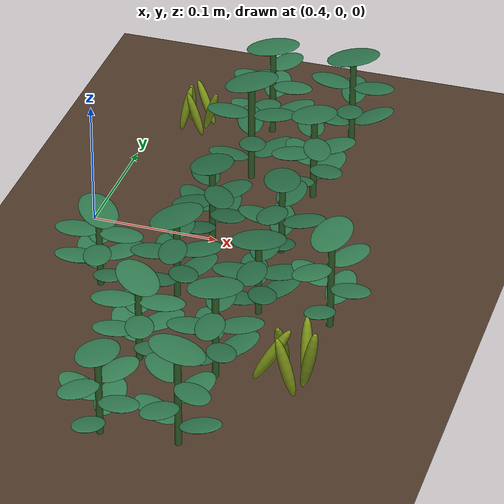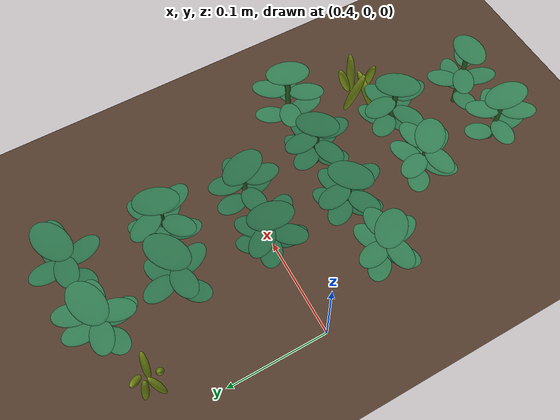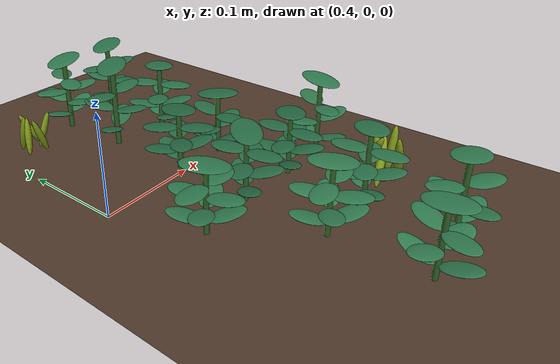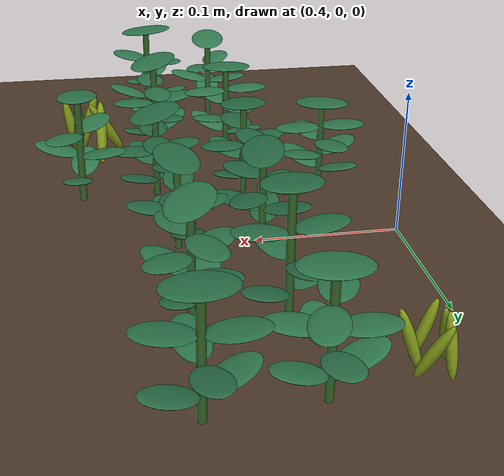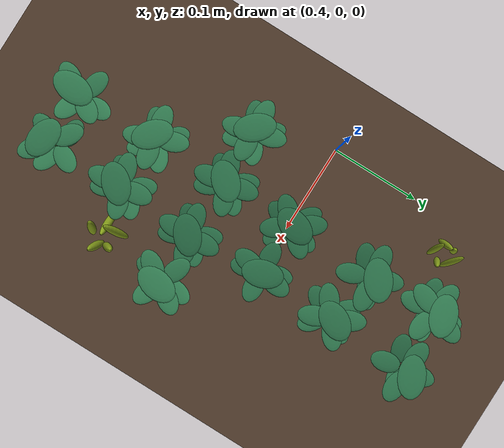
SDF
<sdf version="1.9">
 <world name="jim_field">
  <model name="ground_plane">
   <static>true</static>
   <link name="link">
    <collision name="collision">
     <geometry><plane><normal>0 0 1</normal><size>40 40</size></plane></geometry>
    </collision>
    <visual name="visual">
     <geometry><plane><normal>0 0 1</normal><size>40 40</size></plane></geometry>
     <material>
      <ambient>0.20 0.15 0.11 1</ambient>
      <diffuse>0.30 0.22 0.16 1</diffuse>
      <specular>0.01 0.01 0.01 1</specular>
     </material>
    </visual>
   </link>
  </model>
  <model name="field">
   <static>true</static>
   <pose>0.1837 -0.2516 0 0 0 0</pose>
   <model name="crop_98">
    <static>true</static>
    <pose>0.3139 -0.0006 0 0 0 0</pose>
    <link name="link">
     <visual name="stem">
      <pose>0 0 0.0323 0 0 0</pose>
      <geometry><cylinder><radius>0.0025</radius><length>0.0646</length></cylinder></geometry>
      <material>
       <ambient>0.10 0.22 0.09 1</ambient>
       <diffuse>0.20 0.40 0.16 1</diffuse>
       <specular>0.05 0.06 0.05 1</specular>
      </material>
     </visual>
     <visual name="leaflet_0_0">
      <pose>-0.0018 -0.0174 0.0194 0 -0.300 4.6082</pose>
      <geometry><ellipsoid><radii>0.0170 0.0105 0.0016</radii></ellipsoid></geometry>
      <material>
       <ambient>0.099 0.248 0.149 1</ambient>
       <diffuse>0.188 0.477 0.308 1</diffuse>
       <specular>0.05 0.06 0.05 1</specular>
      </material>
     </visual>
     <visual name="leaflet_0_1">
      <pose>0.0018 0.0174 0.0194 0 -0.300 7.7498</pose>
      <geometry><ellipsoid><radii>0.0170 0.0105 0.0016</radii></ellipsoid></geometry>
      <material>
       <ambient>0.099 0.248 0.149 1</ambient>
       <diffuse>0.188 0.477 0.308 1</diffuse>
       <specular>0.05 0.06 0.05 1</specular>
      </material>
     </visual>
     <visual name="leaflet_1_0">
      <pose>0.0165 -0.0056 0.0327 0 -0.200 5.9582</pose>
      <geometry><ellipsoid><radii>0.0170 0.0105 0.0016</radii></ellipsoid></geometry>
      <material>
       <ambient>0.099 0.248 0.149 1</ambient>
       <diffuse>0.188 0.477 0.308 1</diffuse>
       <specular>0.05 0.06 0.05 1</specular>
      </material>
     </visual>
     <visual name="leaflet_1_1">
      <pose>-0.0165 0.0056 0.0327 0 -0.200 9.0998</pose>
      <geometry><ellipsoid><radii>0.0170 0.0105 0.0016</radii></ellipsoid></geometry>
      <material>
       <ambient>0.099 0.248 0.149 1</ambient>
       <diffuse>0.188 0.477 0.308 1</diffuse>
       <specular>0.05 0.06 0.05 1</specular>
      </material>
     </visual>
     <visual name="leaflet_2_0">
      <pose>0.0091 0.0149 0.0461 0 -0.100 7.3082</pose>
      <geometry><ellipsoid><radii>0.0170 0.0105 0.0016</radii></ellipsoid></geometry>
      <material>
       <ambient>0.099 0.248 0.149 1</ambient>
       <diffuse>0.188 0.477 0.308 1</diffuse>
       <specular>0.05 0.06 0.05 1</specular>
      </material>
     </visual>
     <visual name="leaflet_2_1">
      <pose>-0.0091 -0.0149 0.0461 0 -0.100 10.4498</pose>
      <geometry><ellipsoid><radii>0.0170 0.0105 0.0016</radii></ellipsoid></geometry>
      <material>
       <ambient>0.099 0.248 0.149 1</ambient>
       <diffuse>0.188 0.477 0.308 1</diffuse>
       <specular>0.05 0.06 0.05 1</specular>
      </material>
     </visual>
     <visual name="leaflet_terminal">
      <pose>0 0 0.0686 0 -0.12 4.6082</pose>
      <geometry><ellipsoid><radii>0.0215 0.0140 0.0018</radii></ellipsoid></geometry>
      <material>
       <ambient>0.099 0.248 0.149 1</ambient>
       <diffuse>0.188 0.477 0.308 1</diffuse>
       <specular>0.05 0.06 0.05 1</specular>
      </material>
     </visual>
    </link>
   </model>
   <model name="crop_99">
    <static>true</static>
    <pose>0.3697 0.0043 0 0 0 0</pose>
    <link name="link">
     <visual name="stem">
      <pose>0 0 0.0381 0 0 0</pose>
      <geometry><cylinder><radius>0.0026</radius><length>0.0761</length></cylinder></geometry>
      <material>
       <ambient>0.10 0.22 0.09 1</ambient>
       <diffuse>0.20 0.40 0.16 1</diffuse>
       <specular>0.05 0.06 0.05 1</specular>
      </material>
     </visual>
     <visual name="leaflet_0_0">
      <pose>-0.0176 0.0040 0.0228 0 -0.300 2.9194</pose>
      <geometry><ellipsoid><radii>0.0170 0.0105 0.0016</radii></ellipsoid></geometry>
      <material>
       <ambient>0.095 0.241 0.143 1</ambient>
       <diffuse>0.180 0.463 0.298 1</diffuse>
       <specular>0.05 0.06 0.05 1</specular>
      </material>
     </visual>
     <visual name="leaflet_0_1">
      <pose>0.0176 -0.0040 0.0228 0 -0.300 6.0610</pose>
      <geometry><ellipsoid><radii>0.0170 0.0105 0.0016</radii></ellipsoid></geometry>
      <material>
       <ambient>0.095 0.241 0.143 1</ambient>
       <diffuse>0.180 0.463 0.298 1</diffuse>
       <specular>0.05 0.06 0.05 1</specular>
      </material>
     </visual>
     <visual name="leaflet_1_0">
      <pose>-0.0077 -0.0163 0.0386 0 -0.200 4.2694</pose>
      <geometry><ellipsoid><radii>0.0170 0.0105 0.0016</radii></ellipsoid></geometry>
      <material>
       <ambient>0.095 0.241 0.143 1</ambient>
       <diffuse>0.180 0.463 0.298 1</diffuse>
       <specular>0.05 0.06 0.05 1</specular>
      </material>
     </visual>
     <visual name="leaflet_1_1">
      <pose>0.0077 0.0163 0.0386 0 -0.200 7.4110</pose>
      <geometry><ellipsoid><radii>0.0170 0.0105 0.0016</radii></ellipsoid></geometry>
      <material>
       <ambient>0.095 0.241 0.143 1</ambient>
       <diffuse>0.180 0.463 0.298 1</diffuse>
       <specular>0.05 0.06 0.05 1</specular>
      </material>
     </visual>
     <visual name="leaflet_2_0">
      <pose>0.0142 -0.0111 0.0543 0 -0.100 5.6194</pose>
      <geometry><ellipsoid><radii>0.0170 0.0105 0.0016</radii></ellipsoid></geometry>
      <material>
       <ambient>0.095 0.241 0.143 1</ambient>
       <diffuse>0.180 0.463 0.298 1</diffuse>
       <specular>0.05 0.06 0.05 1</specular>
      </material>
     </visual>
     <visual name="leaflet_2_1">
      <pose>-0.0142 0.0111 0.0543 0 -0.100 8.7610</pose>
      <geometry><ellipsoid><radii>0.0170 0.0105 0.0016</radii></ellipsoid></geometry>
      <material>
       <ambient>0.095 0.241 0.143 1</ambient>
       <diffuse>0.180 0.463 0.298 1</diffuse>
       <specular>0.05 0.06 0.05 1</specular>
      </material>
     </visual>
     <visual name="leaflet_terminal">
      <pose>0 0 0.0801 0 -0.12 2.9194</pose>
      <geometry><ellipsoid><radii>0.0215 0.0140 0.0018</radii></ellipsoid></geometry>
      <material>
       <ambient>0.095 0.241 0.143 1</ambient>
       <diffuse>0.180 0.463 0.298 1</diffuse>
       <specular>0.05 0.06 0.05 1</specular>
      </material>
     </visual>
    </link>
   </model>
   <model name="crop_115">
    <static>true</static>
    <pose>0.3111 0.0891 0 0 0 0</pose>
    <link name="link">
     <visual name="stem">
      <pose>0 0 0.0334 0 0 0</pose>
      <geometry><cylinder><radius>0.0025</radius><length>0.0668</length></cylinder></geometry>
      <material>
       <ambient>0.10 0.22 0.09 1</ambient>
       <diffuse>0.20 0.40 0.16 1</diffuse>
       <specular>0.05 0.06 0.05 1</specular>
      </material>
     </visual>
     <visual name="leaflet_0_0">
      <pose>-0.0128 0.0120 0.0200 0 -0.300 2.3888</pose>
      <geometry><ellipsoid><radii>0.0170 0.0105 0.0016</radii></ellipsoid></geometry>
      <material>
       <ambient>0.097 0.245 0.146 1</ambient>
       <diffuse>0.185 0.471 0.304 1</diffuse>
       <specular>0.05 0.06 0.05 1</specular>
      </material>
     </visual>
     <visual name="leaflet_0_1">
      <pose>0.0128 -0.0120 0.0200 0 -0.300 5.5304</pose>
      <geometry><ellipsoid><radii>0.0170 0.0105 0.0016</radii></ellipsoid></geometry>
      <material>
       <ambient>0.097 0.245 0.146 1</ambient>
       <diffuse>0.185 0.471 0.304 1</diffuse>
       <specular>0.05 0.06 0.05 1</specular>
      </material>
     </visual>
     <visual name="leaflet_1_0">
      <pose>-0.0145 -0.0099 0.0304 0 -0.200 3.7388</pose>
      <geometry><ellipsoid><radii>0.0170 0.0105 0.0016</radii></ellipsoid></geometry>
      <material>
       <ambient>0.097 0.245 0.146 1</ambient>
       <diffuse>0.185 0.471 0.304 1</diffuse>
       <specular>0.05 0.06 0.05 1</specular>
      </material>
     </visual>
     <visual name="leaflet_1_1">
      <pose>0.0145 0.0099 0.0304 0 -0.200 6.8804</pose>
      <geometry><ellipsoid><radii>0.0170 0.0105 0.0016</radii></ellipsoid></geometry>
      <material>
       <ambient>0.097 0.245 0.146 1</ambient>
       <diffuse>0.185 0.471 0.304 1</diffuse>
       <specular>0.05 0.06 0.05 1</specular>
      </material>
     </visual>
     <visual name="leaflet_2_0">
      <pose>0.0065 -0.0163 0.0407 0 -0.100 5.0888</pose>
      <geometry><ellipsoid><radii>0.0170 0.0105 0.0016</radii></ellipsoid></geometry>
      <material>
       <ambient>0.097 0.245 0.146 1</ambient>
       <diffuse>0.185 0.471 0.304 1</diffuse>
       <specular>0.05 0.06 0.05 1</specular>
      </material>
     </visual>
     <visual name="leaflet_2_1">
      <pose>-0.0065 0.0163 0.0407 0 -0.100 8.2304</pose>
      <geometry><ellipsoid><radii>0.0170 0.0105 0.0016</radii></ellipsoid></geometry>
      <material>
       <ambient>0.097 0.245 0.146 1</ambient>
       <diffuse>0.185 0.471 0.304 1</diffuse>
       <specular>0.05 0.06 0.05 1</specular>
      </material>
     </visual>
     <visual name="leaflet_3_0">
      <pose>0.0173 0.0027 0.0511 0 0.000 6.4388</pose>
      <geometry><ellipsoid><radii>0.0170 0.0105 0.0016</radii></ellipsoid></geometry>
      <material>
       <ambient>0.097 0.245 0.146 1</ambient>
       <diffuse>0.185 0.471 0.304 1</diffuse>
       <specular>0.05 0.06 0.05 1</specular>
      </material>
     </visual>
     <visual name="leaflet_3_1">
      <pose>-0.0173 -0.0027 0.0511 0 0.000 9.5804</pose>
      <geometry><ellipsoid><radii>0.0170 0.0105 0.0016</radii></ellipsoid></geometry>
      <material>
       <ambient>0.097 0.245 0.146 1</ambient>
       <diffuse>0.185 0.471 0.304 1</diffuse>
       <specular>0.05 0.06 0.05 1</specular>
      </material>
     </visual>
     <visual name="leaflet_terminal">
      <pose>0 0 0.0708 0 -0.12 2.3888</pose>
      <geometry><ellipsoid><radii>0.0215 0.0140 0.0018</radii></ellipsoid></geometry>
      <material>
       <ambient>0.097 0.245 0.146 1</ambient>
       <diffuse>0.185 0.471 0.304 1</diffuse>
       <specular>0.05 0.06 0.05 1</specular>
      </material>
     </visual>
    </link>
   </model>
   <model name="crop_116">
    <static>true</static>
    <pose>0.3700 0.0862 0 0 0 0</pose>
    <link name="link">
     <visual name="stem">
      <pose>0 0 0.0364 0 0 0</pose>
      <geometry><cylinder><radius>0.0026</radius><length>0.0729</length></cylinder></geometry>
      <material>
       <ambient>0.10 0.22 0.09 1</ambient>
       <diffuse>0.20 0.40 0.16 1</diffuse>
       <specular>0.05 0.06 0.05 1</specular>
      </material>
     </visual>
     <visual name="leaflet_0_0">
      <pose>-0.0130 -0.0123 0.0219 0 -0.300 3.9001</pose>
      <geometry><ellipsoid><radii>0.0170 0.0105 0.0016</radii></ellipsoid></geometry>
      <material>
       <ambient>0.088 0.230 0.134 1</ambient>
       <diffuse>0.167 0.441 0.283 1</diffuse>
       <specular>0.05 0.06 0.05 1</specular>
      </material>
     </visual>
     <visual name="leaflet_0_1">
      <pose>0.0130 0.0123 0.0219 0 -0.300 7.0416</pose>
      <geometry><ellipsoid><radii>0.0170 0.0105 0.0016</radii></ellipsoid></geometry>
      <material>
       <ambient>0.088 0.230 0.134 1</ambient>
       <diffuse>0.167 0.441 0.283 1</diffuse>
       <specular>0.05 0.06 0.05 1</specular>
      </material>
     </visual>
     <visual name="leaflet_1_0">
      <pose>0.0092 -0.0154 0.0332 0 -0.200 5.2501</pose>
      <geometry><ellipsoid><radii>0.0170 0.0105 0.0016</radii></ellipsoid></geometry>
      <material>
       <ambient>0.088 0.230 0.134 1</ambient>
       <diffuse>0.167 0.441 0.283 1</diffuse>
       <specular>0.05 0.06 0.05 1</specular>
      </material>
     </visual>
     <visual name="leaflet_1_1">
      <pose>-0.0092 0.0154 0.0332 0 -0.200 8.3916</pose>
      <geometry><ellipsoid><radii>0.0170 0.0105 0.0016</radii></ellipsoid></geometry>
      <material>
       <ambient>0.088 0.230 0.134 1</ambient>
       <diffuse>0.167 0.441 0.283 1</diffuse>
       <specular>0.05 0.06 0.05 1</specular>
      </material>
     </visual>
     <visual name="leaflet_2_0">
      <pose>0.0170 0.0056 0.0444 0 -0.100 6.6001</pose>
      <geometry><ellipsoid><radii>0.0170 0.0105 0.0016</radii></ellipsoid></geometry>
      <material>
       <ambient>0.088 0.230 0.134 1</ambient>
       <diffuse>0.167 0.441 0.283 1</diffuse>
       <specular>0.05 0.06 0.05 1</specular>
      </material>
     </visual>
     <visual name="leaflet_2_1">
      <pose>-0.0170 -0.0056 0.0444 0 -0.100 9.7416</pose>
      <geometry><ellipsoid><radii>0.0170 0.0105 0.0016</radii></ellipsoid></geometry>
      <material>
       <ambient>0.088 0.230 0.134 1</ambient>
       <diffuse>0.167 0.441 0.283 1</diffuse>
       <specular>0.05 0.06 0.05 1</specular>
      </material>
     </visual>
     <visual name="leaflet_3_0">
      <pose>-0.0017 0.0178 0.0557 0 0.000 7.9501</pose>
      <geometry><ellipsoid><radii>0.0170 0.0105 0.0016</radii></ellipsoid></geometry>
      <material>
       <ambient>0.088 0.230 0.134 1</ambient>
       <diffuse>0.167 0.441 0.283 1</diffuse>
       <specular>0.05 0.06 0.05 1</specular>
      </material>
     </visual>
     <visual name="leaflet_3_1">
      <pose>0.0017 -0.0178 0.0557 0 0.000 11.0916</pose>
      <geometry><ellipsoid><radii>0.0170 0.0105 0.0016</radii></ellipsoid></geometry>
      <material>
       <ambient>0.088 0.230 0.134 1</ambient>
       <diffuse>0.167 0.441 0.283 1</diffuse>
       <specular>0.05 0.06 0.05 1</specular>
      </material>
     </visual>
     <visual name="leaflet_terminal">
      <pose>0 0 0.0769 0 -0.12 3.9001</pose>
      <geometry><ellipsoid><radii>0.0215 0.0140 0.0018</radii></ellipsoid></geometry>
      <material>
       <ambient>0.088 0.230 0.134 1</ambient>
       <diffuse>0.167 0.441 0.283 1</diffuse>
       <specular>0.05 0.06 0.05 1</specular>
      </material>
     </visual>
    </link>
   </model>
   <model name="crop_131">
    <static>true</static>
    <pose>0.2517 0.1695 0 0 0 0</pose>
    <link name="link">
     <visual name="stem">
      <pose>0 0 0.0308 0 0 0</pose>
      <geometry><cylinder><radius>0.0025</radius><length>0.0616</length></cylinder></geometry>
      <material>
       <ambient>0.10 0.22 0.09 1</ambient>
       <diffuse>0.20 0.40 0.16 1</diffuse>
       <specular>0.05 0.06 0.05 1</specular>
      </material>
     </visual>
     <visual name="leaflet_0_0">
      <pose>-0.0112 0.0132 0.0185 0 -0.300 2.2720</pose>
      <geometry><ellipsoid><radii>0.0170 0.0105 0.0016</radii></ellipsoid></geometry>
      <material>
       <ambient>0.093 0.238 0.140 1</ambient>
       <diffuse>0.175 0.456 0.293 1</diffuse>
       <specular>0.05 0.06 0.05 1</specular>
      </material>
     </visual>
     <visual name="leaflet_0_1">
      <pose>0.0112 -0.0132 0.0185 0 -0.300 5.4136</pose>
      <geometry><ellipsoid><radii>0.0170 0.0105 0.0016</radii></ellipsoid></geometry>
      <material>
       <ambient>0.093 0.238 0.140 1</ambient>
       <diffuse>0.175 0.456 0.293 1</diffuse>
       <specular>0.05 0.06 0.05 1</specular>
      </material>
     </visual>
     <visual name="leaflet_1_0">
      <pose>-0.0153 -0.0080 0.0280 0 -0.200 3.6220</pose>
      <geometry><ellipsoid><radii>0.0170 0.0105 0.0016</radii></ellipsoid></geometry>
      <material>
       <ambient>0.093 0.238 0.140 1</ambient>
       <diffuse>0.175 0.456 0.293 1</diffuse>
       <specular>0.05 0.06 0.05 1</specular>
      </material>
     </visual>
     <visual name="leaflet_1_1">
      <pose>0.0153 0.0080 0.0280 0 -0.200 6.7636</pose>
      <geometry><ellipsoid><radii>0.0170 0.0105 0.0016</radii></ellipsoid></geometry>
      <material>
       <ambient>0.093 0.238 0.140 1</ambient>
       <diffuse>0.175 0.456 0.293 1</diffuse>
       <specular>0.05 0.06 0.05 1</specular>
      </material>
     </visual>
     <visual name="leaflet_2_0">
      <pose>0.0044 -0.0167 0.0376 0 -0.100 4.9720</pose>
      <geometry><ellipsoid><radii>0.0170 0.0105 0.0016</radii></ellipsoid></geometry>
      <material>
       <ambient>0.093 0.238 0.140 1</ambient>
       <diffuse>0.175 0.456 0.293 1</diffuse>
       <specular>0.05 0.06 0.05 1</specular>
      </material>
     </visual>
     <visual name="leaflet_2_1">
      <pose>-0.0044 0.0167 0.0376 0 -0.100 8.1136</pose>
      <geometry><ellipsoid><radii>0.0170 0.0105 0.0016</radii></ellipsoid></geometry>
      <material>
       <ambient>0.093 0.238 0.140 1</ambient>
       <diffuse>0.175 0.456 0.293 1</diffuse>
       <specular>0.05 0.06 0.05 1</specular>
      </material>
     </visual>
     <visual name="leaflet_3_0">
      <pose>0.0173 0.0007 0.0471 0 0.000 6.3220</pose>
      <geometry><ellipsoid><radii>0.0170 0.0105 0.0016</radii></ellipsoid></geometry>
      <material>
       <ambient>0.093 0.238 0.140 1</ambient>
       <diffuse>0.175 0.456 0.293 1</diffuse>
       <specular>0.05 0.06 0.05 1</specular>
      </material>
     </visual>
     <visual name="leaflet_3_1">
      <pose>-0.0173 -0.0007 0.0471 0 0.000 9.4636</pose>
      <geometry><ellipsoid><radii>0.0170 0.0105 0.0016</radii></ellipsoid></geometry>
      <material>
       <ambient>0.093 0.238 0.140 1</ambient>
       <diffuse>0.175 0.456 0.293 1</diffuse>
       <specular>0.05 0.06 0.05 1</specular>
      </material>
     </visual>
     <visual name="leaflet_terminal">
      <pose>0 0 0.0656 0 -0.12 2.2720</pose>
      <geometry><ellipsoid><radii>0.0215 0.0140 0.0018</radii></ellipsoid></geometry>
      <material>
       <ambient>0.093 0.238 0.140 1</ambient>
       <diffuse>0.175 0.456 0.293 1</diffuse>
       <specular>0.05 0.06 0.05 1</specular>
      </material>
     </visual>
    </link>
   </model>
   <model name="crop_132">
    <static>true</static>
    <pose>0.3113 0.1736 0 0 0 0</pose>
    <link name="link">
     <visual name="stem">
      <pose>0 0 0.0331 0 0 0</pose>
      <geometry><cylinder><radius>0.0025</radius><length>0.0661</length></cylinder></geometry>
      <material>
       <ambient>0.10 0.22 0.09 1</ambient>
       <diffuse>0.20 0.40 0.16 1</diffuse>
       <specular>0.05 0.06 0.05 1</specular>
      </material>
     </visual>
     <visual name="leaflet_0_0">
      <pose>0.0119 0.0128 0.0198 0 -0.300 0.8228</pose>
      <geometry><ellipsoid><radii>0.0170 0.0105 0.0016</radii></ellipsoid></geometry>
      <material>
       <ambient>0.079 0.214 0.122 1</ambient>
       <diffuse>0.147 0.409 0.260 1</diffuse>
       <specular>0.05 0.06 0.05 1</specular>
      </material>
     </visual>
     <visual name="leaflet_0_1">
      <pose>-0.0119 -0.0128 0.0198 0 -0.300 3.9644</pose>
      <geometry><ellipsoid><radii>0.0170 0.0105 0.0016</radii></ellipsoid></geometry>
      <material>
       <ambient>0.079 0.214 0.122 1</ambient>
       <diffuse>0.147 0.409 0.260 1</diffuse>
       <specular>0.05 0.06 0.05 1</specular>
      </material>
     </visual>
     <visual name="leaflet_1_0">
      <pose>-0.0099 0.0144 0.0301 0 -0.200 2.1728</pose>
      <geometry><ellipsoid><radii>0.0170 0.0105 0.0016</radii></ellipsoid></geometry>
      <material>
       <ambient>0.079 0.214 0.122 1</ambient>
       <diffuse>0.147 0.409 0.260 1</diffuse>
       <specular>0.05 0.06 0.05 1</specular>
      </material>
     </visual>
     <visual name="leaflet_1_1">
      <pose>0.0099 -0.0144 0.0301 0 -0.200 5.3144</pose>
      <geometry><ellipsoid><radii>0.0170 0.0105 0.0016</radii></ellipsoid></geometry>
      <material>
       <ambient>0.079 0.214 0.122 1</ambient>
       <diffuse>0.147 0.409 0.260 1</diffuse>
       <specular>0.05 0.06 0.05 1</specular>
      </material>
     </visual>
     <visual name="leaflet_2_0">
      <pose>-0.0163 -0.0065 0.0403 0 -0.100 3.5228</pose>
      <geometry><ellipsoid><radii>0.0170 0.0105 0.0016</radii></ellipsoid></geometry>
      <material>
       <ambient>0.079 0.214 0.122 1</ambient>
       <diffuse>0.147 0.409 0.260 1</diffuse>
       <specular>0.05 0.06 0.05 1</specular>
      </material>
     </visual>
     <visual name="leaflet_2_1">
      <pose>0.0163 0.0065 0.0403 0 -0.100 6.6644</pose>
      <geometry><ellipsoid><radii>0.0170 0.0105 0.0016</radii></ellipsoid></geometry>
      <material>
       <ambient>0.079 0.214 0.122 1</ambient>
       <diffuse>0.147 0.409 0.260 1</diffuse>
       <specular>0.05 0.06 0.05 1</specular>
      </material>
     </visual>
     <visual name="leaflet_3_0">
      <pose>0.0028 -0.0173 0.0506 0 0.000 4.8728</pose>
      <geometry><ellipsoid><radii>0.0170 0.0105 0.0016</radii></ellipsoid></geometry>
      <material>
       <ambient>0.079 0.214 0.122 1</ambient>
       <diffuse>0.147 0.409 0.260 1</diffuse>
       <specular>0.05 0.06 0.05 1</specular>
      </material>
     </visual>
     <visual name="leaflet_3_1">
      <pose>-0.0028 0.0173 0.0506 0 0.000 8.0144</pose>
      <geometry><ellipsoid><radii>0.0170 0.0105 0.0016</radii></ellipsoid></geometry>
      <material>
       <ambient>0.079 0.214 0.122 1</ambient>
       <diffuse>0.147 0.409 0.260 1</diffuse>
       <specular>0.05 0.06 0.05 1</specular>
      </material>
     </visual>
     <visual name="leaflet_terminal">
      <pose>0 0 0.0701 0 -0.12 0.8228</pose>
      <geometry><ellipsoid><radii>0.0215 0.0140 0.0018</radii></ellipsoid></geometry>
      <material>
       <ambient>0.079 0.214 0.122 1</ambient>
       <diffuse>0.147 0.409 0.260 1</diffuse>
       <specular>0.05 0.06 0.05 1</specular>
      </material>
     </visual>
    </link>
   </model>
   <model name="crop_133">
    <static>true</static>
    <pose>0.3758 0.1698 0 0 0 0</pose>
    <link name="link">
     <visual name="stem">
      <pose>0 0 0.0304 0 0 0</pose>
      <geometry><cylinder><radius>0.0025</radius><length>0.0609</length></cylinder></geometry>
      <material>
       <ambient>0.10 0.22 0.09 1</ambient>
       <diffuse>0.20 0.40 0.16 1</diffuse>
       <specular>0.05 0.06 0.05 1</specular>
      </material>
     </visual>
     <visual name="leaflet_0_0">
      <pose>-0.0134 -0.0109 0.0183 0 -0.300 3.8237</pose>
      <geometry><ellipsoid><radii>0.0170 0.0105 0.0016</radii></ellipsoid></geometry>
      <material>
       <ambient>0.077 0.212 0.120 1</ambient>
       <diffuse>0.144 0.404 0.257 1</diffuse>
       <specular>0.05 0.06 0.05 1</specular>
      </material>
     </visual>
     <visual name="leaflet_0_1">
      <pose>0.0134 0.0109 0.0183 0 -0.300 6.9653</pose>
      <geometry><ellipsoid><radii>0.0170 0.0105 0.0016</radii></ellipsoid></geometry>
      <material>
       <ambient>0.077 0.212 0.120 1</ambient>
       <diffuse>0.144 0.404 0.257 1</diffuse>
       <specular>0.05 0.06 0.05 1</specular>
      </material>
     </visual>
     <visual name="leaflet_1_0">
      <pose>0.0077 -0.0154 0.0277 0 -0.200 5.1737</pose>
      <geometry><ellipsoid><radii>0.0170 0.0105 0.0016</radii></ellipsoid></geometry>
      <material>
       <ambient>0.077 0.212 0.120 1</ambient>
       <diffuse>0.144 0.404 0.257 1</diffuse>
       <specular>0.05 0.06 0.05 1</specular>
      </material>
     </visual>
     <visual name="leaflet_1_1">
      <pose>-0.0077 0.0154 0.0277 0 -0.200 8.3153</pose>
      <geometry><ellipsoid><radii>0.0170 0.0105 0.0016</radii></ellipsoid></geometry>
      <material>
       <ambient>0.077 0.212 0.120 1</ambient>
       <diffuse>0.144 0.404 0.257 1</diffuse>
       <specular>0.05 0.06 0.05 1</specular>
      </material>
     </visual>
     <visual name="leaflet_2_0">
      <pose>0.0167 0.0041 0.0371 0 -0.100 6.5237</pose>
      <geometry><ellipsoid><radii>0.0170 0.0105 0.0016</radii></ellipsoid></geometry>
      <material>
       <ambient>0.077 0.212 0.120 1</ambient>
       <diffuse>0.144 0.404 0.257 1</diffuse>
       <specular>0.05 0.06 0.05 1</specular>
      </material>
     </visual>
     <visual name="leaflet_2_1">
      <pose>-0.0167 -0.0041 0.0371 0 -0.100 9.6653</pose>
      <geometry><ellipsoid><radii>0.0170 0.0105 0.0016</radii></ellipsoid></geometry>
      <material>
       <ambient>0.077 0.212 0.120 1</ambient>
       <diffuse>0.144 0.404 0.257 1</diffuse>
       <specular>0.05 0.06 0.05 1</specular>
      </material>
     </visual>
     <visual name="leaflet_3_0">
      <pose>-0.0003 0.0172 0.0466 0 0.000 7.8737</pose>
      <geometry><ellipsoid><radii>0.0170 0.0105 0.0016</radii></ellipsoid></geometry>
      <material>
       <ambient>0.077 0.212 0.120 1</ambient>
       <diffuse>0.144 0.404 0.257 1</diffuse>
       <specular>0.05 0.06 0.05 1</specular>
      </material>
     </visual>
     <visual name="leaflet_3_1">
      <pose>0.0003 -0.0172 0.0466 0 0.000 11.0153</pose>
      <geometry><ellipsoid><radii>0.0170 0.0105 0.0016</radii></ellipsoid></geometry>
      <material>
       <ambient>0.077 0.212 0.120 1</ambient>
       <diffuse>0.144 0.404 0.257 1</diffuse>
       <specular>0.05 0.06 0.05 1</specular>
      </material>
     </visual>
     <visual name="leaflet_terminal">
      <pose>0 0 0.0649 0 -0.12 3.8237</pose>
      <geometry><ellipsoid><radii>0.0215 0.0140 0.0018</radii></ellipsoid></geometry>
      <material>
       <ambient>0.077 0.212 0.120 1</ambient>
       <diffuse>0.144 0.404 0.257 1</diffuse>
       <specular>0.05 0.06 0.05 1</specular>
      </material>
     </visual>
    </link>
   </model>
   <model name="crop_134">
    <static>true</static>
    <pose>0.4306 0.1707 0 0 0 0</pose>
    <link name="link">
     <visual name="stem">
      <pose>0 0 0.0383 0 0 0</pose>
      <geometry><cylinder><radius>0.0026</radius><length>0.0766</length></cylinder></geometry>
      <material>
       <ambient>0.10 0.22 0.09 1</ambient>
       <diffuse>0.20 0.40 0.16 1</diffuse>
       <specular>0.05 0.06 0.05 1</specular>
      </material>
     </visual>
     <visual name="leaflet_0_0">
      <pose>0.0029 0.0179 0.0230 0 -0.300 1.4111</pose>
      <geometry><ellipsoid><radii>0.0170 0.0105 0.0016</radii></ellipsoid></geometry>
      <material>
       <ambient>0.095 0.242 0.144 1</ambient>
       <diffuse>0.180 0.464 0.299 1</diffuse>
       <specular>0.05 0.06 0.05 1</specular>
      </material>
     </visual>
     <visual name="leaflet_0_1">
      <pose>-0.0029 -0.0179 0.0230 0 -0.300 4.5527</pose>
      <geometry><ellipsoid><radii>0.0170 0.0105 0.0016</radii></ellipsoid></geometry>
      <material>
       <ambient>0.095 0.242 0.144 1</ambient>
       <diffuse>0.180 0.464 0.299 1</diffuse>
       <specular>0.05 0.06 0.05 1</specular>
      </material>
     </visual>
     <visual name="leaflet_1_0">
      <pose>-0.0168 0.0067 0.0388 0 -0.200 2.7611</pose>
      <geometry><ellipsoid><radii>0.0170 0.0105 0.0016</radii></ellipsoid></geometry>
      <material>
       <ambient>0.095 0.242 0.144 1</ambient>
       <diffuse>0.180 0.464 0.299 1</diffuse>
       <specular>0.05 0.06 0.05 1</specular>
      </material>
     </visual>
     <visual name="leaflet_1_1">
      <pose>0.0168 -0.0067 0.0388 0 -0.200 5.9027</pose>
      <geometry><ellipsoid><radii>0.0170 0.0105 0.0016</radii></ellipsoid></geometry>
      <material>
       <ambient>0.095 0.242 0.144 1</ambient>
       <diffuse>0.180 0.464 0.299 1</diffuse>
       <specular>0.05 0.06 0.05 1</specular>
      </material>
     </visual>
     <visual name="leaflet_2_0">
      <pose>-0.0102 -0.0149 0.0546 0 -0.100 4.1111</pose>
      <geometry><ellipsoid><radii>0.0170 0.0105 0.0016</radii></ellipsoid></geometry>
      <material>
       <ambient>0.095 0.242 0.144 1</ambient>
       <diffuse>0.180 0.464 0.299 1</diffuse>
       <specular>0.05 0.06 0.05 1</specular>
      </material>
     </visual>
     <visual name="leaflet_2_1">
      <pose>0.0102 0.0149 0.0546 0 -0.100 7.2527</pose>
      <geometry><ellipsoid><radii>0.0170 0.0105 0.0016</radii></ellipsoid></geometry>
      <material>
       <ambient>0.095 0.242 0.144 1</ambient>
       <diffuse>0.180 0.464 0.299 1</diffuse>
       <specular>0.05 0.06 0.05 1</specular>
      </material>
     </visual>
     <visual name="leaflet_terminal">
      <pose>0 0 0.0806 0 -0.12 1.4111</pose>
      <geometry><ellipsoid><radii>0.0215 0.0140 0.0018</radii></ellipsoid></geometry>
      <material>
       <ambient>0.095 0.242 0.144 1</ambient>
       <diffuse>0.180 0.464 0.299 1</diffuse>
       <specular>0.05 0.06 0.05 1</specular>
      </material>
     </visual>
    </link>
   </model>
   <model name="crop_149">
    <static>true</static>
    <pose>0.3125 0.2541 0 0 0 0</pose>
    <link name="link">
     <visual name="stem">
      <pose>0 0 0.0315 0 0 0</pose>
      <geometry><cylinder><radius>0.0025</radius><length>0.0630</length></cylinder></geometry>
      <material>
       <ambient>0.10 0.22 0.09 1</ambient>
       <diffuse>0.20 0.40 0.16 1</diffuse>
       <specular>0.05 0.06 0.05 1</specular>
      </material>
     </visual>
     <visual name="leaflet_0_0">
      <pose>-0.0050 -0.0166 0.0189 0 -0.300 4.4204</pose>
      <geometry><ellipsoid><radii>0.0170 0.0105 0.0016</radii></ellipsoid></geometry>
      <material>
       <ambient>0.073 0.205 0.114 1</ambient>
       <diffuse>0.136 0.390 0.247 1</diffuse>
       <specular>0.05 0.06 0.05 1</specular>
      </material>
     </visual>
     <visual name="leaflet_0_1">
      <pose>0.0050 0.0166 0.0189 0 -0.300 7.5620</pose>
      <geometry><ellipsoid><radii>0.0170 0.0105 0.0016</radii></ellipsoid></geometry>
      <material>
       <ambient>0.073 0.205 0.114 1</ambient>
       <diffuse>0.136 0.390 0.247 1</diffuse>
       <specular>0.05 0.06 0.05 1</specular>
      </material>
     </visual>
     <visual name="leaflet_1_0">
      <pose>0.0151 -0.0085 0.0286 0 -0.200 5.7704</pose>
      <geometry><ellipsoid><radii>0.0170 0.0105 0.0016</radii></ellipsoid></geometry>
      <material>
       <ambient>0.073 0.205 0.114 1</ambient>
       <diffuse>0.136 0.390 0.247 1</diffuse>
       <specular>0.05 0.06 0.05 1</specular>
      </material>
     </visual>
     <visual name="leaflet_1_1">
      <pose>-0.0151 0.0085 0.0286 0 -0.200 8.9120</pose>
      <geometry><ellipsoid><radii>0.0170 0.0105 0.0016</radii></ellipsoid></geometry>
      <material>
       <ambient>0.073 0.205 0.114 1</ambient>
       <diffuse>0.136 0.390 0.247 1</diffuse>
       <specular>0.05 0.06 0.05 1</specular>
      </material>
     </visual>
     <visual name="leaflet_2_0">
      <pose>0.0116 0.0129 0.0384 0 -0.100 7.1204</pose>
      <geometry><ellipsoid><radii>0.0170 0.0105 0.0016</radii></ellipsoid></geometry>
      <material>
       <ambient>0.073 0.205 0.114 1</ambient>
       <diffuse>0.136 0.390 0.247 1</diffuse>
       <specular>0.05 0.06 0.05 1</specular>
      </material>
     </visual>
     <visual name="leaflet_2_1">
      <pose>-0.0116 -0.0129 0.0384 0 -0.100 10.2620</pose>
      <geometry><ellipsoid><radii>0.0170 0.0105 0.0016</radii></ellipsoid></geometry>
      <material>
       <ambient>0.073 0.205 0.114 1</ambient>
       <diffuse>0.136 0.390 0.247 1</diffuse>
       <specular>0.05 0.06 0.05 1</specular>
      </material>
     </visual>
     <visual name="leaflet_3_0">
      <pose>-0.0100 0.0142 0.0482 0 0.000 8.4704</pose>
      <geometry><ellipsoid><radii>0.0170 0.0105 0.0016</radii></ellipsoid></geometry>
      <material>
       <ambient>0.073 0.205 0.114 1</ambient>
       <diffuse>0.136 0.390 0.247 1</diffuse>
       <specular>0.05 0.06 0.05 1</specular>
      </material>
     </visual>
     <visual name="leaflet_3_1">
      <pose>0.0100 -0.0142 0.0482 0 0.000 11.6120</pose>
      <geometry><ellipsoid><radii>0.0170 0.0105 0.0016</radii></ellipsoid></geometry>
      <material>
       <ambient>0.073 0.205 0.114 1</ambient>
       <diffuse>0.136 0.390 0.247 1</diffuse>
       <specular>0.05 0.06 0.05 1</specular>
      </material>
     </visual>
     <visual name="leaflet_terminal">
      <pose>0 0 0.0670 0 -0.12 4.4204</pose>
      <geometry><ellipsoid><radii>0.0215 0.0140 0.0018</radii></ellipsoid></geometry>
      <material>
       <ambient>0.073 0.205 0.114 1</ambient>
       <diffuse>0.136 0.390 0.247 1</diffuse>
       <specular>0.05 0.06 0.05 1</specular>
      </material>
     </visual>
    </link>
   </model>
   <model name="crop_150">
    <static>true</static>
    <pose>0.3687 0.2522 0 0 0 0</pose>
    <link name="link">
     <visual name="stem">
      <pose>0 0 0.0304 0 0 0</pose>
      <geometry><cylinder><radius>0.0025</radius><length>0.0609</length></cylinder></geometry>
      <material>
       <ambient>0.10 0.22 0.09 1</ambient>
       <diffuse>0.20 0.40 0.16 1</diffuse>
       <specular>0.05 0.06 0.05 1</specular>
      </material>
     </visual>
     <visual name="leaflet_0_0">
      <pose>0.0049 -0.0165 0.0183 0 -0.300 4.9998</pose>
      <geometry><ellipsoid><radii>0.0170 0.0105 0.0016</radii></ellipsoid></geometry>
      <material>
       <ambient>0.079 0.215 0.122 1</ambient>
       <diffuse>0.148 0.409 0.261 1</diffuse>
       <specular>0.05 0.06 0.05 1</specular>
      </material>
     </visual>
     <visual name="leaflet_0_1">
      <pose>-0.0049 0.0165 0.0183 0 -0.300 8.1414</pose>
      <geometry><ellipsoid><radii>0.0170 0.0105 0.0016</radii></ellipsoid></geometry>
      <material>
       <ambient>0.079 0.215 0.122 1</ambient>
       <diffuse>0.148 0.409 0.261 1</diffuse>
       <specular>0.05 0.06 0.05 1</specular>
      </material>
     </visual>
     <visual name="leaflet_1_0">
      <pose>0.0172 0.0011 0.0308 0 -0.200 6.3498</pose>
      <geometry><ellipsoid><radii>0.0170 0.0105 0.0016</radii></ellipsoid></geometry>
      <material>
       <ambient>0.079 0.215 0.122 1</ambient>
       <diffuse>0.148 0.409 0.261 1</diffuse>
       <specular>0.05 0.06 0.05 1</specular>
      </material>
     </visual>
     <visual name="leaflet_1_1">
      <pose>-0.0172 -0.0011 0.0308 0 -0.200 9.4914</pose>
      <geometry><ellipsoid><radii>0.0170 0.0105 0.0016</radii></ellipsoid></geometry>
      <material>
       <ambient>0.079 0.215 0.122 1</ambient>
       <diffuse>0.148 0.409 0.261 1</diffuse>
       <specular>0.05 0.06 0.05 1</specular>
      </material>
     </visual>
     <visual name="leaflet_2_0">
      <pose>0.0026 0.0170 0.0434 0 -0.100 7.6998</pose>
      <geometry><ellipsoid><radii>0.0170 0.0105 0.0016</radii></ellipsoid></geometry>
      <material>
       <ambient>0.079 0.215 0.122 1</ambient>
       <diffuse>0.148 0.409 0.261 1</diffuse>
       <specular>0.05 0.06 0.05 1</specular>
      </material>
     </visual>
     <visual name="leaflet_2_1">
      <pose>-0.0026 -0.0170 0.0434 0 -0.100 10.8414</pose>
      <geometry><ellipsoid><radii>0.0170 0.0105 0.0016</radii></ellipsoid></geometry>
      <material>
       <ambient>0.079 0.215 0.122 1</ambient>
       <diffuse>0.148 0.409 0.261 1</diffuse>
       <specular>0.05 0.06 0.05 1</specular>
      </material>
     </visual>
     <visual name="leaflet_terminal">
      <pose>0 0 0.0649 0 -0.12 4.9998</pose>
      <geometry><ellipsoid><radii>0.0215 0.0140 0.0018</radii></ellipsoid></geometry>
      <material>
       <ambient>0.079 0.215 0.122 1</ambient>
       <diffuse>0.148 0.409 0.261 1</diffuse>
       <specular>0.05 0.06 0.05 1</specular>
      </material>
     </visual>
    </link>
   </model>
   <model name="crop_166">
    <static>true</static>
    <pose>0.3148 0.3465 0 0 0 0</pose>
    <link name="link">
     <visual name="stem">
      <pose>0 0 0.0421 0 0 0</pose>
      <geometry><cylinder><radius>0.0027</radius><length>0.0841</length></cylinder></geometry>
      <material>
       <ambient>0.10 0.22 0.09 1</ambient>
       <diffuse>0.20 0.40 0.16 1</diffuse>
       <specular>0.05 0.06 0.05 1</specular>
      </material>
     </visual>
     <visual name="leaflet_0_0">
      <pose>0.0156 0.0099 0.0252 0 -0.300 0.5671</pose>
      <geometry><ellipsoid><radii>0.0170 0.0105 0.0016</radii></ellipsoid></geometry>
      <material>
       <ambient>0.082 0.220 0.126 1</ambient>
       <diffuse>0.154 0.419 0.268 1</diffuse>
       <specular>0.05 0.06 0.05 1</specular>
      </material>
     </visual>
     <visual name="leaflet_0_1">
      <pose>-0.0156 -0.0099 0.0252 0 -0.300 3.7087</pose>
      <geometry><ellipsoid><radii>0.0170 0.0105 0.0016</radii></ellipsoid></geometry>
      <material>
       <ambient>0.082 0.220 0.126 1</ambient>
       <diffuse>0.154 0.419 0.268 1</diffuse>
       <specular>0.05 0.06 0.05 1</specular>
      </material>
     </visual>
     <visual name="leaflet_1_0">
      <pose>-0.0063 0.0174 0.0426 0 -0.200 1.9171</pose>
      <geometry><ellipsoid><radii>0.0170 0.0105 0.0016</radii></ellipsoid></geometry>
      <material>
       <ambient>0.082 0.220 0.126 1</ambient>
       <diffuse>0.154 0.419 0.268 1</diffuse>
       <specular>0.05 0.06 0.05 1</specular>
      </material>
     </visual>
     <visual name="leaflet_1_1">
      <pose>0.0063 -0.0174 0.0426 0 -0.200 5.0587</pose>
      <geometry><ellipsoid><radii>0.0170 0.0105 0.0016</radii></ellipsoid></geometry>
      <material>
       <ambient>0.082 0.220 0.126 1</ambient>
       <diffuse>0.154 0.419 0.268 1</diffuse>
       <specular>0.05 0.06 0.05 1</specular>
      </material>
     </visual>
     <visual name="leaflet_2_0">
      <pose>-0.0183 -0.0023 0.0600 0 -0.100 3.2671</pose>
      <geometry><ellipsoid><radii>0.0170 0.0105 0.0016</radii></ellipsoid></geometry>
      <material>
       <ambient>0.082 0.220 0.126 1</ambient>
       <diffuse>0.154 0.419 0.268 1</diffuse>
       <specular>0.05 0.06 0.05 1</specular>
      </material>
     </visual>
     <visual name="leaflet_2_1">
      <pose>0.0183 0.0023 0.0600 0 -0.100 6.4087</pose>
      <geometry><ellipsoid><radii>0.0170 0.0105 0.0016</radii></ellipsoid></geometry>
      <material>
       <ambient>0.082 0.220 0.126 1</ambient>
       <diffuse>0.154 0.419 0.268 1</diffuse>
       <specular>0.05 0.06 0.05 1</specular>
      </material>
     </visual>
     <visual name="leaflet_terminal">
      <pose>0 0 0.0881 0 -0.12 0.5671</pose>
      <geometry><ellipsoid><radii>0.0215 0.0140 0.0018</radii></ellipsoid></geometry>
      <material>
       <ambient>0.082 0.220 0.126 1</ambient>
       <diffuse>0.154 0.419 0.268 1</diffuse>
       <specular>0.05 0.06 0.05 1</specular>
      </material>
     </visual>
    </link>
   </model>
   <model name="crop_167">
    <static>true</static>
    <pose>0.3696 0.3347 0 0 0 0</pose>
    <link name="link">
     <visual name="stem">
      <pose>0 0 0.0355 0 0 0</pose>
      <geometry><cylinder><radius>0.0026</radius><length>0.0711</length></cylinder></geometry>
      <material>
       <ambient>0.10 0.22 0.09 1</ambient>
       <diffuse>0.20 0.40 0.16 1</diffuse>
       <specular>0.05 0.06 0.05 1</specular>
      </material>
     </visual>
     <visual name="leaflet_0_0">
      <pose>-0.0084 -0.0157 0.0213 0 -0.300 4.2223</pose>
      <geometry><ellipsoid><radii>0.0170 0.0105 0.0016</radii></ellipsoid></geometry>
      <material>
       <ambient>0.088 0.229 0.133 1</ambient>
       <diffuse>0.165 0.438 0.281 1</diffuse>
       <specular>0.05 0.06 0.05 1</specular>
      </material>
     </visual>
     <visual name="leaflet_0_1">
      <pose>0.0084 0.0157 0.0213 0 -0.300 7.3639</pose>
      <geometry><ellipsoid><radii>0.0170 0.0105 0.0016</radii></ellipsoid></geometry>
      <material>
       <ambient>0.088 0.229 0.133 1</ambient>
       <diffuse>0.165 0.438 0.281 1</diffuse>
       <specular>0.05 0.06 0.05 1</specular>
      </material>
     </visual>
     <visual name="leaflet_1_0">
      <pose>0.0135 -0.0116 0.0323 0 -0.200 5.5723</pose>
      <geometry><ellipsoid><radii>0.0170 0.0105 0.0016</radii></ellipsoid></geometry>
      <material>
       <ambient>0.088 0.229 0.133 1</ambient>
       <diffuse>0.165 0.438 0.281 1</diffuse>
       <specular>0.05 0.06 0.05 1</specular>
      </material>
     </visual>
     <visual name="leaflet_1_1">
      <pose>-0.0135 0.0116 0.0323 0 -0.200 8.7139</pose>
      <geometry><ellipsoid><radii>0.0170 0.0105 0.0016</radii></ellipsoid></geometry>
      <material>
       <ambient>0.088 0.229 0.133 1</ambient>
       <diffuse>0.165 0.438 0.281 1</diffuse>
       <specular>0.05 0.06 0.05 1</specular>
      </material>
     </visual>
     <visual name="leaflet_2_0">
      <pose>0.0143 0.0106 0.0433 0 -0.100 6.9223</pose>
      <geometry><ellipsoid><radii>0.0170 0.0105 0.0016</radii></ellipsoid></geometry>
      <material>
       <ambient>0.088 0.229 0.133 1</ambient>
       <diffuse>0.165 0.438 0.281 1</diffuse>
       <specular>0.05 0.06 0.05 1</specular>
      </material>
     </visual>
     <visual name="leaflet_2_1">
      <pose>-0.0143 -0.0106 0.0433 0 -0.100 10.0639</pose>
      <geometry><ellipsoid><radii>0.0170 0.0105 0.0016</radii></ellipsoid></geometry>
      <material>
       <ambient>0.088 0.229 0.133 1</ambient>
       <diffuse>0.165 0.438 0.281 1</diffuse>
       <specular>0.05 0.06 0.05 1</specular>
      </material>
     </visual>
     <visual name="leaflet_3_0">
      <pose>-0.0072 0.0163 0.0544 0 0.000 8.2723</pose>
      <geometry><ellipsoid><radii>0.0170 0.0105 0.0016</radii></ellipsoid></geometry>
      <material>
       <ambient>0.088 0.229 0.133 1</ambient>
       <diffuse>0.165 0.438 0.281 1</diffuse>
       <specular>0.05 0.06 0.05 1</specular>
      </material>
     </visual>
     <visual name="leaflet_3_1">
      <pose>0.0072 -0.0163 0.0544 0 0.000 11.4139</pose>
      <geometry><ellipsoid><radii>0.0170 0.0105 0.0016</radii></ellipsoid></geometry>
      <material>
       <ambient>0.088 0.229 0.133 1</ambient>
       <diffuse>0.165 0.438 0.281 1</diffuse>
       <specular>0.05 0.06 0.05 1</specular>
      </material>
     </visual>
     <visual name="leaflet_terminal">
      <pose>0 0 0.0751 0 -0.12 4.2223</pose>
      <geometry><ellipsoid><radii>0.0215 0.0140 0.0018</radii></ellipsoid></geometry>
      <material>
       <ambient>0.088 0.229 0.133 1</ambient>
       <diffuse>0.165 0.438 0.281 1</diffuse>
       <specular>0.05 0.06 0.05 1</specular>
      </material>
     </visual>
    </link>
   </model>
   <model name="crop_183">
    <static>true</static>
    <pose>0.3101 0.4195 0 0 0 0</pose>
    <link name="link">
     <visual name="stem">
      <pose>0 0 0.0376 0 0 0</pose>
      <geometry><cylinder><radius>0.0026</radius><length>0.0751</length></cylinder></geometry>
      <material>
       <ambient>0.10 0.22 0.09 1</ambient>
       <diffuse>0.20 0.40 0.16 1</diffuse>
       <specular>0.05 0.06 0.05 1</specular>
      </material>
     </visual>
     <visual name="leaflet_0_0">
      <pose>0.0173 0.0048 0.0225 0 -0.300 0.2723</pose>
      <geometry><ellipsoid><radii>0.0170 0.0105 0.0016</radii></ellipsoid></geometry>
      <material>
       <ambient>0.093 0.239 0.141 1</ambient>
       <diffuse>0.177 0.458 0.295 1</diffuse>
       <specular>0.05 0.06 0.05 1</specular>
      </material>
     </visual>
     <visual name="leaflet_0_1">
      <pose>-0.0173 -0.0048 0.0225 0 -0.300 3.4139</pose>
      <geometry><ellipsoid><radii>0.0170 0.0105 0.0016</radii></ellipsoid></geometry>
      <material>
       <ambient>0.093 0.239 0.141 1</ambient>
       <diffuse>0.177 0.458 0.295 1</diffuse>
       <specular>0.05 0.06 0.05 1</specular>
      </material>
     </visual>
     <visual name="leaflet_1_0">
      <pose>-0.0009 0.0180 0.0342 0 -0.200 1.6223</pose>
      <geometry><ellipsoid><radii>0.0170 0.0105 0.0016</radii></ellipsoid></geometry>
      <material>
       <ambient>0.093 0.239 0.141 1</ambient>
       <diffuse>0.177 0.458 0.295 1</diffuse>
       <specular>0.05 0.06 0.05 1</specular>
      </material>
     </visual>
     <visual name="leaflet_1_1">
      <pose>0.0009 -0.0180 0.0342 0 -0.200 4.7639</pose>
      <geometry><ellipsoid><radii>0.0170 0.0105 0.0016</radii></ellipsoid></geometry>
      <material>
       <ambient>0.093 0.239 0.141 1</ambient>
       <diffuse>0.177 0.458 0.295 1</diffuse>
       <specular>0.05 0.06 0.05 1</specular>
      </material>
     </visual>
     <visual name="leaflet_2_0">
      <pose>-0.0177 0.0030 0.0458 0 -0.100 2.9723</pose>
      <geometry><ellipsoid><radii>0.0170 0.0105 0.0016</radii></ellipsoid></geometry>
      <material>
       <ambient>0.093 0.239 0.141 1</ambient>
       <diffuse>0.177 0.458 0.295 1</diffuse>
       <specular>0.05 0.06 0.05 1</specular>
      </material>
     </visual>
     <visual name="leaflet_2_1">
      <pose>0.0177 -0.0030 0.0458 0 -0.100 6.1139</pose>
      <geometry><ellipsoid><radii>0.0170 0.0105 0.0016</radii></ellipsoid></geometry>
      <material>
       <ambient>0.093 0.239 0.141 1</ambient>
       <diffuse>0.177 0.458 0.295 1</diffuse>
       <specular>0.05 0.06 0.05 1</specular>
      </material>
     </visual>
     <visual name="leaflet_3_0">
      <pose>-0.0068 -0.0167 0.0575 0 0.000 4.3223</pose>
      <geometry><ellipsoid><radii>0.0170 0.0105 0.0016</radii></ellipsoid></geometry>
      <material>
       <ambient>0.093 0.239 0.141 1</ambient>
       <diffuse>0.177 0.458 0.295 1</diffuse>
       <specular>0.05 0.06 0.05 1</specular>
      </material>
     </visual>
     <visual name="leaflet_3_1">
      <pose>0.0068 0.0167 0.0575 0 0.000 7.4639</pose>
      <geometry><ellipsoid><radii>0.0170 0.0105 0.0016</radii></ellipsoid></geometry>
      <material>
       <ambient>0.093 0.239 0.141 1</ambient>
       <diffuse>0.177 0.458 0.295 1</diffuse>
       <specular>0.05 0.06 0.05 1</specular>
      </material>
     </visual>
     <visual name="leaflet_terminal">
      <pose>0 0 0.0791 0 -0.12 0.2723</pose>
      <geometry><ellipsoid><radii>0.0215 0.0140 0.0018</radii></ellipsoid></geometry>
      <material>
       <ambient>0.093 0.239 0.141 1</ambient>
       <diffuse>0.177 0.458 0.295 1</diffuse>
       <specular>0.05 0.06 0.05 1</specular>
      </material>
     </visual>
    </link>
   </model>
   <model name="crop_184">
    <static>true</static>
    <pose>0.3757 0.4253 0 0 0 0</pose>
    <link name="link">
     <visual name="stem">
      <pose>0 0 0.0369 0 0 0</pose>
      <geometry><cylinder><radius>0.0026</radius><length>0.0737</length></cylinder></geometry>
      <material>
       <ambient>0.10 0.22 0.09 1</ambient>
       <diffuse>0.20 0.40 0.16 1</diffuse>
       <specular>0.05 0.06 0.05 1</specular>
      </material>
     </visual>
     <visual name="leaflet_0_0">
      <pose>0.0166 0.0067 0.0221 0 -0.300 0.3820</pose>
      <geometry><ellipsoid><radii>0.0170 0.0105 0.0016</radii></ellipsoid></geometry>
      <material>
       <ambient>0.084 0.224 0.129 1</ambient>
       <diffuse>0.159 0.428 0.274 1</diffuse>
       <specular>0.05 0.06 0.05 1</specular>
      </material>
     </visual>
     <visual name="leaflet_0_1">
      <pose>-0.0166 -0.0067 0.0221 0 -0.300 3.5236</pose>
      <geometry><ellipsoid><radii>0.0170 0.0105 0.0016</radii></ellipsoid></geometry>
      <material>
       <ambient>0.084 0.224 0.129 1</ambient>
       <diffuse>0.159 0.428 0.274 1</diffuse>
       <specular>0.05 0.06 0.05 1</specular>
      </material>
     </visual>
     <visual name="leaflet_1_0">
      <pose>-0.0029 0.0177 0.0374 0 -0.200 1.7320</pose>
      <geometry><ellipsoid><radii>0.0170 0.0105 0.0016</radii></ellipsoid></geometry>
      <material>
       <ambient>0.084 0.224 0.129 1</ambient>
       <diffuse>0.159 0.428 0.274 1</diffuse>
       <specular>0.05 0.06 0.05 1</specular>
      </material>
     </visual>
     <visual name="leaflet_1_1">
      <pose>0.0029 -0.0177 0.0374 0 -0.200 4.8736</pose>
      <geometry><ellipsoid><radii>0.0170 0.0105 0.0016</radii></ellipsoid></geometry>
      <material>
       <ambient>0.084 0.224 0.129 1</ambient>
       <diffuse>0.159 0.428 0.274 1</diffuse>
       <specular>0.05 0.06 0.05 1</specular>
      </material>
     </visual>
     <visual name="leaflet_2_0">
      <pose>-0.0179 0.0011 0.0526 0 -0.100 3.0820</pose>
      <geometry><ellipsoid><radii>0.0170 0.0105 0.0016</radii></ellipsoid></geometry>
      <material>
       <ambient>0.084 0.224 0.129 1</ambient>
       <diffuse>0.159 0.428 0.274 1</diffuse>
       <specular>0.05 0.06 0.05 1</specular>
      </material>
     </visual>
     <visual name="leaflet_2_1">
      <pose>0.0179 -0.0011 0.0526 0 -0.100 6.2236</pose>
      <geometry><ellipsoid><radii>0.0170 0.0105 0.0016</radii></ellipsoid></geometry>
      <material>
       <ambient>0.084 0.224 0.129 1</ambient>
       <diffuse>0.159 0.428 0.274 1</diffuse>
       <specular>0.05 0.06 0.05 1</specular>
      </material>
     </visual>
     <visual name="leaflet_terminal">
      <pose>0 0 0.0777 0 -0.12 0.3820</pose>
      <geometry><ellipsoid><radii>0.0215 0.0140 0.0018</radii></ellipsoid></geometry>
      <material>
       <ambient>0.084 0.224 0.129 1</ambient>
       <diffuse>0.159 0.428 0.274 1</diffuse>
       <specular>0.05 0.06 0.05 1</specular>
      </material>
     </visual>
    </link>
   </model>
   <model name="weed_far_7">
    <static>true</static>
    <pose>0.2519 0.4047 0 0 0 0</pose>
    <link name="link">
     <visual name="blade_0">
      <pose>0.0024 0.0105 0.0195 -0.4564 0.1035 1.3479</pose>
      <geometry><ellipsoid><radii>0.0034 0.0034 0.0195</radii></ellipsoid></geometry>
      <material>
       <ambient>0.24 0.30 0.04 1</ambient>
       <diffuse>0.52 0.62 0.10 1</diffuse>
       <specular>0.05 0.06 0.05 1</specular>
      </material>
     </visual>
     <visual name="blade_1">
      <pose>-0.0086 0.0064 0.0195 -0.1231 -0.1647 2.4997</pose>
      <geometry><ellipsoid><radii>0.0034 0.0034 0.0195</radii></ellipsoid></geometry>
      <material>
       <ambient>0.24 0.30 0.04 1</ambient>
       <diffuse>0.52 0.62 0.10 1</diffuse>
       <specular>0.05 0.06 0.05 1</specular>
      </material>
     </visual>
     <visual name="blade_2">
      <pose>-0.0099 -0.0041 0.0195 0.0961 -0.2320 3.5342</pose>
      <geometry><ellipsoid><radii>0.0034 0.0034 0.0195</radii></ellipsoid></geometry>
      <material>
       <ambient>0.24 0.30 0.04 1</ambient>
       <diffuse>0.52 0.62 0.10 1</diffuse>
       <specular>0.05 0.06 0.05 1</specular>
      </material>
     </visual>
     <visual name="blade_3">
      <pose>-0.0001 -0.0107 0.0195 0.3192 -0.0034 4.7016</pose>
      <geometry><ellipsoid><radii>0.0034 0.0034 0.0195</radii></ellipsoid></geometry>
      <material>
       <ambient>0.24 0.30 0.04 1</ambient>
       <diffuse>0.52 0.62 0.10 1</diffuse>
       <specular>0.05 0.06 0.05 1</specular>
      </material>
     </visual>
     <visual name="blade_4">
      <pose>0.0105 -0.0020 0.0195 0.0626 0.3236 6.0920</pose>
      <geometry><ellipsoid><radii>0.0034 0.0034 0.0195</radii></ellipsoid></geometry>
      <material>
       <ambient>0.24 0.30 0.04 1</ambient>
       <diffuse>0.52 0.62 0.10 1</diffuse>
       <specular>0.05 0.06 0.05 1</specular>
      </material>
     </visual>
    </link>
   </model>
   <model name="weed_far_11">
    <static>true</static>
    <pose>0.4238 0.0924 0 0 0 0</pose>
    <link name="link">
     <visual name="blade_0">
      <pose>0.0085 0.0107 0.0248 -0.2629 0.2080 0.9015</pose>
      <geometry><ellipsoid><radii>0.0043 0.0043 0.0248</radii></ellipsoid></geometry>
      <material>
       <ambient>0.24 0.30 0.04 1</ambient>
       <diffuse>0.52 0.62 0.10 1</diffuse>
       <specular>0.05 0.06 0.05 1</specular>
      </material>
     </visual>
     <visual name="blade_1">
      <pose>-0.0095 0.0098 0.0248 -0.3058 -0.2969 2.3414</pose>
      <geometry><ellipsoid><radii>0.0043 0.0043 0.0248</radii></ellipsoid></geometry>
      <material>
       <ambient>0.24 0.30 0.04 1</ambient>
       <diffuse>0.52 0.62 0.10 1</diffuse>
       <specular>0.05 0.06 0.05 1</specular>
      </material>
     </visual>
     <visual name="blade_2">
      <pose>-0.0135 -0.0019 0.0248 0.0762 -0.5438 3.2808</pose>
      <geometry><ellipsoid><radii>0.0043 0.0043 0.0248</radii></ellipsoid></geometry>
      <material>
       <ambient>0.24 0.30 0.04 1</ambient>
       <diffuse>0.52 0.62 0.10 1</diffuse>
       <specular>0.05 0.06 0.05 1</specular>
      </material>
     </visual>
     <visual name="blade_3">
      <pose>0.0003 -0.0137 0.0248 0.2681 0.0065 4.7366</pose>
      <geometry><ellipsoid><radii>0.0043 0.0043 0.0248</radii></ellipsoid></geometry>
      <material>
       <ambient>0.24 0.30 0.04 1</ambient>
       <diffuse>0.52 0.62 0.10 1</diffuse>
       <specular>0.05 0.06 0.05 1</specular>
      </material>
     </visual>
     <visual name="blade_4">
      <pose>0.0137 -0.0004 0.0248 0.0050 0.1843 6.2559</pose>
      <geometry><ellipsoid><radii>0.0043 0.0043 0.0248</radii></ellipsoid></geometry>
      <material>
       <ambient>0.24 0.30 0.04 1</ambient>
       <diffuse>0.52 0.62 0.10 1</diffuse>
       <specular>0.05 0.06 0.05 1</specular>
      </material>
     </visual>
    </link>
   </model>
  </model>
 </world>
</sdf>
